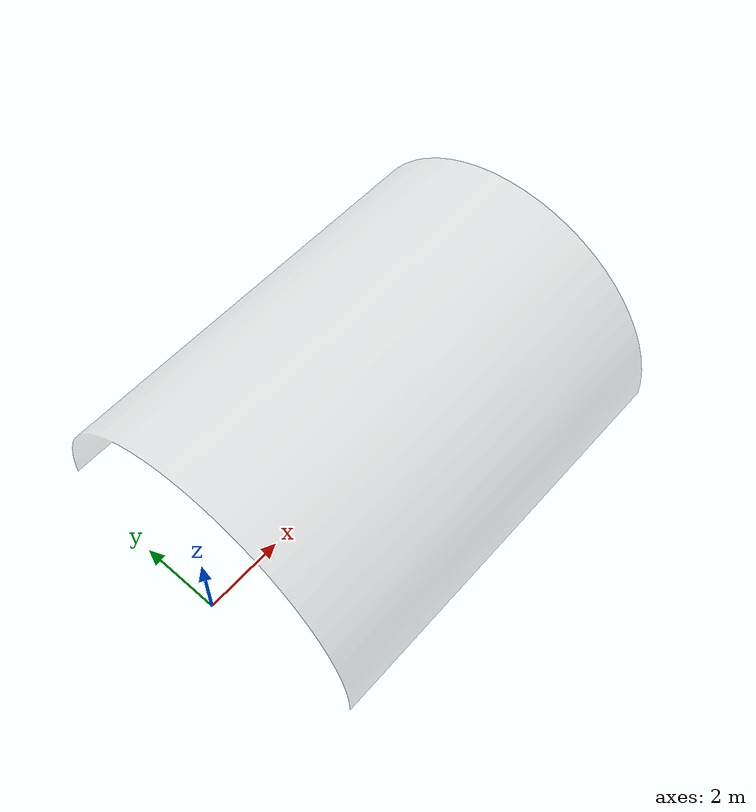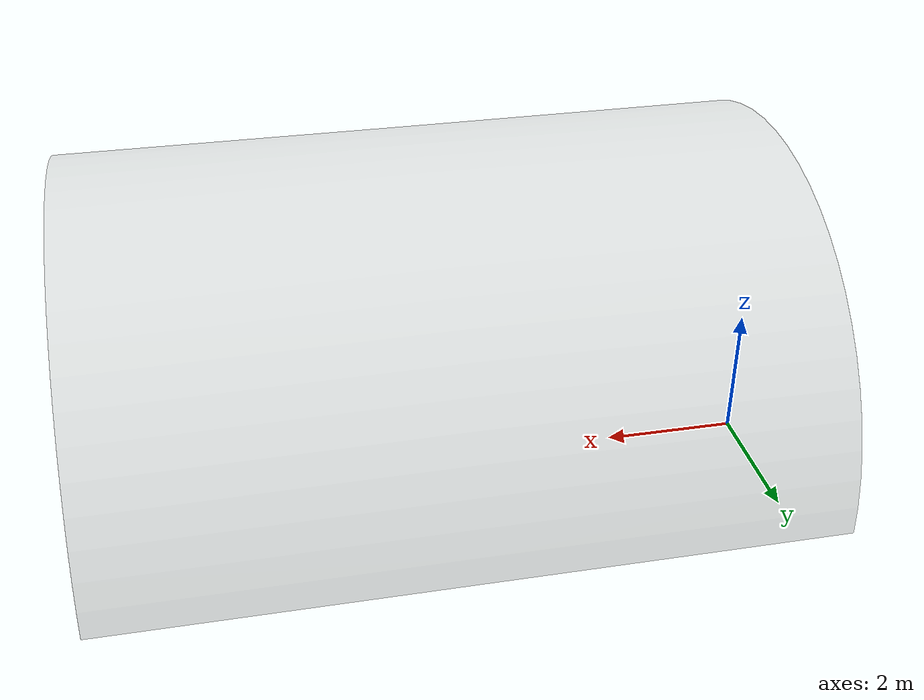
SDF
<?xml version="1.0" ?>
<sdf version="1.5">

<model name="canopy10m">
<static>1</static>
<pose>0.0 0.0 0.0 1.5707 0.0 1.5707</pose>

  <link name="link">

    <collision name="collision">
      <geometry>
        <mesh>
          <uri>model://canopy10m/Canopy10m.stl</uri>
        </mesh>
      </geometry>
    </collision>

    <visual name="visual">
      <geometry>
        <mesh>
          <uri>model://canopy10m/Canopy10m.stl</uri>
        </mesh>
      </geometry>
    <transparency>0.65</transparency>
    </visual>

  </link>
</model>
</sdf>
